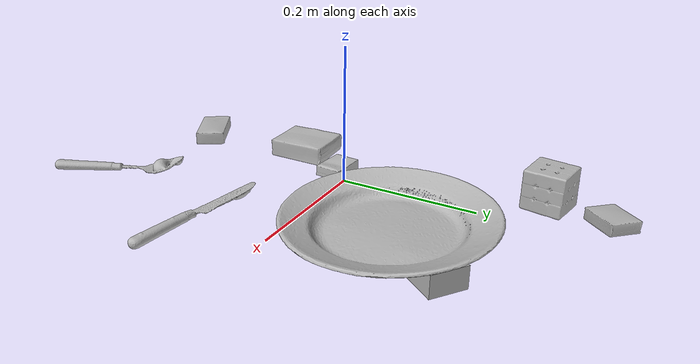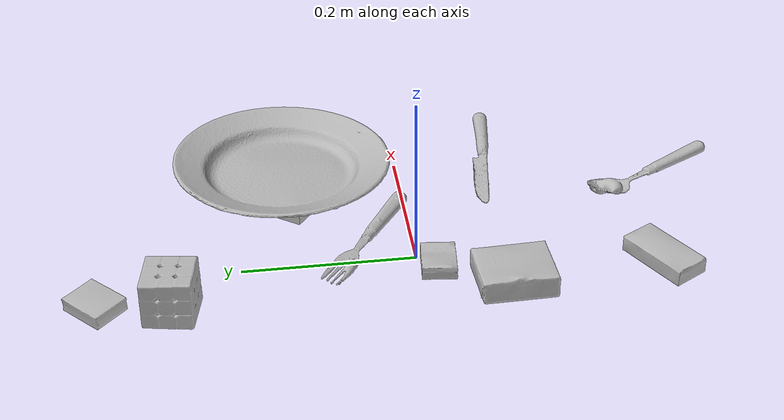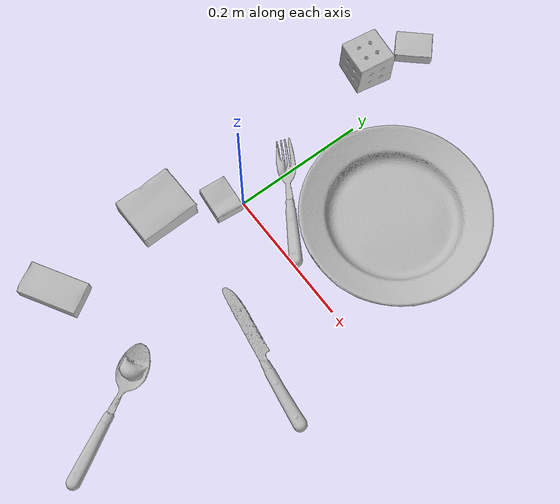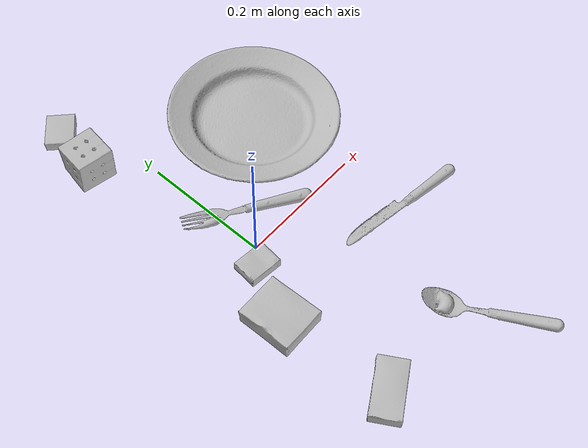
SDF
<sdf version="1.4">
  <world name="default">
    <light name="light1" type="point">
      <pose>0 0 1 0 0 0</pose>
      <diffuse>3 3 3 1</diffuse>
      <specular>3 3 3 1</specular>
    </light>
    <light name="light2" type="point">
      <pose>0 0.5 2 0 0 0</pose>
      <diffuse>1 1 1 1</diffuse>
      <specular>1 1 1 1</specular>
    </light>
    <light name="light3" type="point">
      <pose>0 0.5 2 0 0 0</pose>
      <diffuse>3 3 3 1</diffuse>
      <specular>3 3 3 1</specular>
    </light>
    <scene>
      <ambient>0.7 0.7 0.7</ambient>
    </scene>
    <model name="box11">
      <link name="link_box11">
        <collision name="default">
          <geometry>
            <mesh>
              <uri>model://pudding_box/collision_meshes/collision.obj</uri>
              <scale>0.5 0.5 0.5</scale>
            </mesh>
          </geometry>
          <surface>
            <friction>
              <ode>
                <mu>0.5</mu>
                <mu2>0.5</mu2>
              </ode>
            </friction>
          <contact>
        <ode>
            <max_vel>0</max_vel>
            <min_depth>0.0001</min_depth>
            <kp>1e8</kp>
        </ode>
    </contact></surface>
        </collision>
        <visual name="default">
          <geometry>
            <mesh>
              <uri>model://pudding_box/visual_meshes/visual.dae</uri>
              <scale>0.5 0.5 0.5</scale>
            </mesh>
          </geometry>
        </visual>
        <inertial>
          <mass>0.03786866366863251</mass>
          <pose>0.00024474109522998333 0.00040339428232982755 -0.0002594413817860186 0.005213102272185547 -0.006603797326323335 0.020079825161634604</pose>
          <inertia>
            <ixx>1.0702144e-05</ixx>
            <iyy>7.2004777e-06</iyy>
            <izz>1.580451e-05</izz>
            <ixy>0</ixy>
            <ixz>0</ixz>
            <iyz>0</iyz>
          </inertia>
        </inertial>
      </link>
      <pose>-0.05046367645263672 0.3598087728023529 0.00986290443688631 0.022348358221980055 -0.011391826806230462 -0.7817567221320083</pose>
    </model>
    <model name="box12">
      <link name="link_box12">
        <collision name="default">
          <geometry>
            <mesh>
              <uri>model://gelatin_box/collision_meshes/collision.obj</uri>
              <scale>1.0 1.0 1.0</scale>
            </mesh>
          </geometry>
          <surface>
            <friction>
              <ode>
                <mu>0.5</mu>
                <mu2>0.5</mu2>
              </ode>
            </friction>
          <contact>
        <ode>
            <max_vel>0</max_vel>
            <min_depth>0.0001</min_depth>
            <kp>1e8</kp>
        </ode>
    </contact></surface>
        </collision>
        <visual name="default">
          <geometry>
            <mesh>
              <uri>model://gelatin_box/visual_meshes/visual.dae</uri>
              <scale>1.0 1.0 1.0</scale>
            </mesh>
          </geometry>
        </visual>
        <inertial>
          <mass>0.12588495016098022</mass>
          <pose>0.0004319618456065655 0.00011156871914863586 -0.0003640321083366871 -0.0010503723379331838 -0.004755819617810625 0.016440561335826234</pose>
          <inertia>
            <ixx>8.886451e-05</ixx>
            <iyy>6.3475454e-05</iyy>
            <izz>0.00013527159</izz>
            <ixy>0</ixy>
            <ixz>0</ixz>
            <iyz>0</iyz>
          </inertia>
        </inertial>
      </link>
      <pose>-0.06216108053922653 -0.10176896303892136 0.01516831573098898 0.005597052219849647 -0.007304105637907698 -3.1205577043003934</pose>
    </model>
    <model name="box13">
      <link name="link_box13">
        <collision name="default">
          <geometry>
            <mesh>
              <uri>model://rubiks_cube/collision_meshes/collision.obj</uri>
              <scale>1.0 1.0 1.0</scale>
            </mesh>
          </geometry>
          <surface>
            <friction>
              <ode>
                <mu>0.5</mu>
                <mu2>0.5</mu2>
              </ode>
            </friction>
          <contact>
        <ode>
            <max_vel>0</max_vel>
            <min_depth>0.0001</min_depth>
            <kp>1e8</kp>
        </ode>
    </contact></surface>
        </collision>
        <visual name="default">
          <geometry>
            <mesh>
              <uri>model://rubiks_cube/visual_meshes/visual.dae</uri>
              <scale>1.0 1.0 1.0</scale>
            </mesh>
          </geometry>
        </visual>
        <inertial>
          <mass>0.24923686683177948</mass>
          <pose>2.6721039830590598e-05 5.256966323941015e-05 -7.264316082000732e-06 -0.05467307197132049 -0.09814178001312306 -0.03445579173896148</pose>
          <inertia>
            <ixx>0.00013772011</ixx>
            <iyy>0.00013707785</iyy>
            <izz>0.00013886133</izz>
            <ixy>0</ixy>
            <ixz>0</ixz>
            <iyz>0</iyz>
          </inertia>
        </inertial>
      </link>
      <pose>-0.06532160937786102 0.27683115005493164 0.02867894060909748 -4.221180008122414e-06 -1.3421182435521596e-06 1.4229106968496772</pose>
    </model>
    <model name="box21">
      <link name="link_box21">
        <collision name="default">
          <geometry>
            <mesh>
              <uri>model://cracker_box/collision_meshes/collision.obj</uri>
              <scale>0.25 0.25 0.25</scale>
            </mesh>
          </geometry>
          <surface>
            <friction>
              <ode>
                <mu>0.5</mu>
                <mu2>0.5</mu2>
              </ode>
            </friction>
          <contact>
        <ode>
            <max_vel>0</max_vel>
            <min_depth>0.0001</min_depth>
            <kp>1e8</kp>
        </ode>
    </contact></surface>
        </collision>
        <visual name="default">
          <geometry>
            <mesh>
              <uri>model://cracker_box/visual_meshes/visual.dae</uri>
              <scale>0.25 0.25 0.25</scale>
            </mesh>
          </geometry>
        </visual>
        <inertial>
          <mass>0.030397580936551094</mass>
          <pose>0.00023660376609768718 6.358562677633017e-05 -0.0004257384280208498 -0.0003162076301819785 -0.011106490531717715 0.002546795235004545</pose>
          <inertia>
            <ixx>4.8323677e-06</ixx>
            <iyy>7.979188e-06</iyy>
            <izz>1.1387034e-05</izz>
            <ixy>0</ixy>
            <ixz>0</ixz>
            <iyz>0</iyz>
          </inertia>
        </inertial>
      </link>
      <pose>-0.02082826942205429 -0.022655127570033073 0.009096025489270687 -0.014050520204913666 -0.005016676916376224 3.042041008641807</pose>
    </model>
    <model name="box22">
      <link name="link_box22">
        <collision name="default">
          <geometry>
            <mesh>
              <uri>model://jenga/collision_meshes/collision.obj</uri>
              <scale>1.0 1.0 1.0</scale>
            </mesh>
          </geometry>
          <surface>
            <friction>
              <ode>
                <mu>0.5</mu>
                <mu2>0.5</mu2>
              </ode>
            </friction>
          <contact>
        <ode>
            <max_vel>0</max_vel>
            <min_depth>0.0001</min_depth>
            <kp>1e8</kp>
        </ode>
    </contact></surface>
        </collision>
        <visual name="default">
          <geometry>
            <mesh>
              <uri>model://jenga/visual_meshes/visual.dae</uri>
              <scale>1.0 1.0 1.0</scale>
            </mesh>
          </geometry>
        </visual>
        <inertial>
          <mass>0.22754427790641785</mass>
          <pose>-2.502855807051674e-07 -0.00010250010382151231 -4.0923401684267446e-05 0.0 -7.34215461761844e-07 0.0</pose>
          <inertia>
            <ixx>6.2967025e-05</ixx>
            <iyy>0.00042666285</iyy>
            <izz>0.00045549884</izz>
            <ixy>0</ixy>
            <ixz>0</ixz>
            <iyz>0</iyz>
          </inertia>
        </inertial>
      </link>
      <pose>0.1500091403722763 0.17344148457050323 0.015001523308455944 -4.0683655338403684e-05 -3.5827680855574527e-06 0.9379552806956795</pose>
    </model>
    <model name="box23">
      <link name="link_box23">
        <collision name="default">
          <geometry>
            <mesh>
              <uri>model://sugar_box/collision_meshes/collision.obj</uri>
              <scale>0.5 0.5 0.5</scale>
            </mesh>
          </geometry>
          <surface>
            <friction>
              <ode>
                <mu>0.5</mu>
                <mu2>0.5</mu2>
              </ode>
            </friction>
          <contact>
        <ode>
            <max_vel>0</max_vel>
            <min_depth>0.0001</min_depth>
            <kp>1e8</kp>
        </ode>
    </contact></surface>
        </collision>
        <visual name="default">
          <geometry>
            <mesh>
              <uri>model://sugar_box/visual_meshes/visual.dae</uri>
              <scale>0.5 0.5 0.5</scale>
            </mesh>
          </geometry>
        </visual>
        <inertial>
          <mass>0.07313712686300278</mass>
          <pose>0.0005171863595023751 1.924554817378521e-05 -0.00018182402709499002 -0.0004046264167799433 0.0010506636386831275 0.0026153785560066108</pose>
          <inertia>
            <ixx>1.5234412e-05</ixx>
            <iyy>4.924075e-05</iyy>
            <izz>5.894705e-05</izz>
            <ixy>0</ixy>
            <ixz>0</ixz>
            <iyz>0</iyz>
          </inertia>
        </inertial>
      </link>
      <pose>-0.047332800924777985 -0.27816852927207947 0.011399301700294018 0.000775539016161948 -0.02343268426964046 0.5317233882772303</pose>
    </model>
    <model name="plate1">
      <link name="link_plate1">
        <collision name="default">
          <geometry>
            <mesh>
              <uri>model://plate/collision_meshes/collision.obj</uri>
              <scale>1.0 1.0 1.0</scale>
            </mesh>
          </geometry>
          <surface>
            <friction>
              <ode>
                <mu>0.5</mu>
                <mu2>0.5</mu2>
              </ode>
            </friction>
          <contact>
        <ode>
            <max_vel>0</max_vel>
            <min_depth>0.0001</min_depth>
            <kp>1e8</kp>
        </ode>
    </contact></surface>
        </collision>
        <visual name="default">
          <geometry>
            <mesh>
              <uri>model://plate/visual_meshes/visual.dae</uri>
              <scale>1.0 1.0 1.0</scale>
            </mesh>
          </geometry>
        </visual>
        <inertial>
          <mass>0.2069685012102127</mass>
          <pose>-0.0006044612964615226 0.0002782598603516817 -0.0010561986127868295 0.0022188143427174073 -0.003225461822968263 0.4526007532235607</pose>
          <inertia>
            <ixx>0.0009682027</ixx>
            <iyy>0.0009589421</iyy>
            <izz>0.0018936595</izz>
            <ixy>0</ixy>
            <ixz>0</ixz>
            <iyz>0</iyz>
          </inertia>
        </inertial>
      </link>
      <pose>0.15211451053619385 0.1421176791191101 0.04263688623905182 0.027427059051625385 -0.011700816378548872 1.1125364292176816</pose>
    </model>
    <model name="silverware1">
      <link name="link_silverware1">
        <collision name="default">
          <geometry>
            <mesh>
              <uri>model://knife/collision_meshes/collision.obj</uri>
              <scale>1.0 1.0 1.0</scale>
            </mesh>
          </geometry>
          <surface>
            <friction>
              <ode>
                <mu>0.5</mu>
                <mu2>0.5</mu2>
              </ode>
            </friction>
          <contact>
        <ode>
            <max_vel>0</max_vel>
            <min_depth>0.0001</min_depth>
            <kp>1e8</kp>
        </ode>
    </contact></surface>
        </collision>
        <visual name="default">
          <geometry>
            <mesh>
              <uri>model://knife/visual_meshes/visual.dae</uri>
              <scale>1.0 1.0 1.0</scale>
            </mesh>
          </geometry>
        </visual>
        <inertial>
          <mass>0.01404397189617157</mass>
          <pose>-0.02378525771200657 0.0015275126788765192 5.0620223191799596e-05 0.07306830572090188 0.017248424252748085 -0.00740981553779352</pose>
          <inertia>
            <ixx>3.9862488e-07</ixx>
            <iyy>5.3954667e-05</iyy>
            <izz>5.408303e-05</izz>
            <ixy>0</ixy>
            <ixz>0</ixz>
            <iyz>0</iyz>
          </inertia>
        </inertial>
      </link>
      <pose>0.19388768076896667 -0.10983069986104965 0.007946573197841644 -0.023845297224014583 -0.014543227635792595 2.9874949325028846</pose>
    </model>
    <model name="silverware2">
      <link name="link_silverware2">
        <collision name="default">
          <geometry>
            <mesh>
              <uri>model://fork/collision_meshes/collision.obj</uri>
              <scale>1.0 1.0 1.0</scale>
            </mesh>
          </geometry>
          <surface>
            <friction>
              <ode>
                <mu>0.5</mu>
                <mu2>0.5</mu2>
              </ode>
            </friction>
          <contact>
        <ode>
            <max_vel>0</max_vel>
            <min_depth>0.0001</min_depth>
            <kp>1e8</kp>
        </ode>
    </contact></surface>
        </collision>
        <visual name="default">
          <geometry>
            <mesh>
              <uri>model://fork/visual_meshes/visual.dae</uri>
              <scale>1.0 1.0 1.0</scale>
            </mesh>
          </geometry>
        </visual>
        <inertial>
          <mass>0.012992284260690212</mass>
          <pose>-0.029570037499070168 0.0004658822435885668 0.00032188609475269914 -0.013552170713958372 -0.010977837352032947 0.014453895109592321</pose>
          <inertia>
            <ixx>4.5545306e-07</ixx>
            <iyy>3.3919117e-05</iyy>
            <izz>3.4122822e-05</izz>
            <ixy>0</ixy>
            <ixz>0</ixz>
            <iyz>0</iyz>
          </inertia>
        </inertial>
      </link>
      <pose>0.03926695138216019 0.05309949815273285 0.005696100648492575 -0.1773655722977285 0.025461461509727935 2.5693329135450425</pose>
    </model>
    <model name="silverware3">
      <link name="link_silverware3">
        <collision name="default">
          <geometry>
            <mesh>
              <uri>model://spoon/collision_meshes/collision.obj</uri>
              <scale>1.0 1.0 1.0</scale>
            </mesh>
          </geometry>
          <surface>
            <friction>
              <ode>
                <mu>0.5</mu>
                <mu2>0.5</mu2>
              </ode>
            </friction>
          <contact>
        <ode>
            <max_vel>0</max_vel>
            <min_depth>0.0001</min_depth>
            <kp>1e8</kp>
        </ode>
    </contact></surface>
        </collision>
        <visual name="default">
          <geometry>
            <mesh>
              <uri>model://spoon/visual_meshes/visual.dae</uri>
              <scale>1.0 1.0 1.0</scale>
            </mesh>
          </geometry>
        </visual>
        <inertial>
          <mass>0.01562128309160471</mass>
          <pose>-0.0055263228714466095 -0.0016034174477681518 -0.0007271653157658875 0.03521671072610287 -0.03906584128735088 0.006150609582760137</pose>
          <inertia>
            <ixx>8.688809e-07</ixx>
            <iyy>5.9438455e-05</iyy>
            <izz>5.986695e-05</izz>
            <ixy>0</ixy>
            <ixz>0</ixz>
            <iyz>0</iyz>
          </inertia>
        </inertial>
      </link>
      <pose>0.1340642124414444 -0.3111998438835144 0.00838525965809822 0.006729533608292922 0.026892953322499642 2.067075146921111</pose>
    </model>
  <physics type="ode">
      <max_contacts>50</max_contacts>
      <ode>
        <solver>
          <type>quick</type>
          <iters>75</iters>
        </solver>
        <constraints>
          <contact_max_correcting_vel>0</contact_max_correcting_vel>
          <contact_surface_layer>0</contact_surface_layer>
        </constraints>
      </ode>
    </physics></world>
</sdf>
